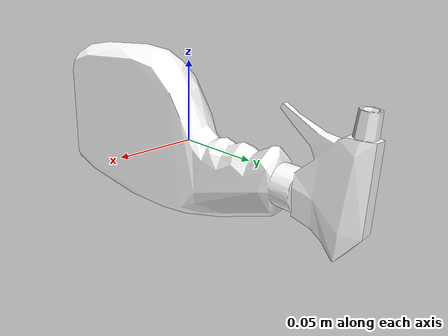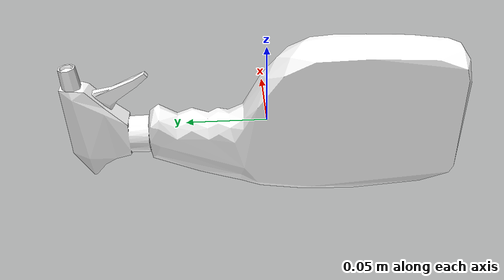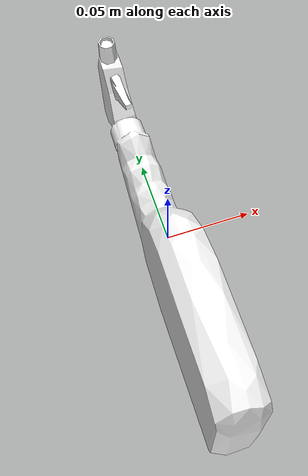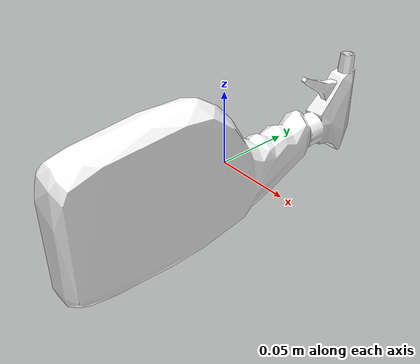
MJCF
<mujoco model="Spray_Bottle_8">
  <default>
    <default class="visual">
      <geom group="2" type="mesh" contype="0" conaffinity="0"/>
    </default>
    <default class="collision">
      <geom group="3" type="mesh"/>
    </default>
  </default>
  <asset>
    <material name="SprayBottle1_varH" specular="0.5" shininess="0.5" rgba="1 1 1 1.0"/>
    <mesh file="Spray_Bottle_8.obj"/>
    <mesh file="Spray_Bottle_8_collision_0.obj"/>
    <mesh file="Spray_Bottle_8_collision_1.obj"/>
    <mesh file="Spray_Bottle_8_collision_2.obj"/>
    <mesh file="Spray_Bottle_8_collision_3.obj"/>
    <mesh file="Spray_Bottle_8_collision_4.obj"/>
    <mesh file="Spray_Bottle_8_collision_5.obj"/>
  </asset>
  <worldbody>
    <body name="Spray_Bottle_8">
      <geom material="SprayBottle1_varH" mesh="Spray_Bottle_8" class="visual"/>
      <geom mesh="Spray_Bottle_8_collision_0" rgba="0.4985374840275216 0.5232375814164991 0.23573116770261193 1" class="collision"/>
      <geom mesh="Spray_Bottle_8_collision_1" rgba="0.1653819397990406 0.38363749842245065 0.21557355268118894 1" class="collision"/>
      <geom mesh="Spray_Bottle_8_collision_2" rgba="0.1843636453967008 0.6793845456199158 0.5703201588335042 1" class="collision"/>
      <geom mesh="Spray_Bottle_8_collision_3" rgba="0.5910388935494607 0.6095890635980229 0.14297792585178715 1" class="collision"/>
      <geom mesh="Spray_Bottle_8_collision_4" rgba="0.7375152994779751 0.4850390904022406 0.5300917190401842 1" class="collision"/>
      <geom mesh="Spray_Bottle_8_collision_5" rgba="0.13025478445520078 0.8160304116182752 0.36005691091016623 1" class="collision"/>
    </body>
  </worldbody>
</mujoco>
